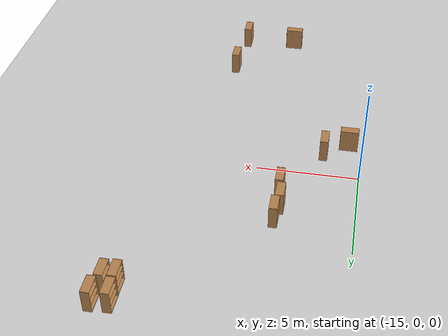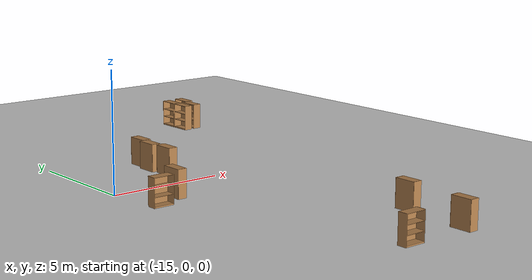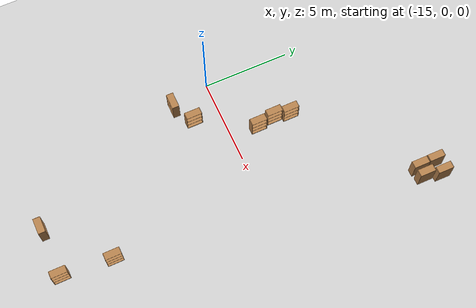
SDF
<sdf version="1.6">
 <world name="default">
  <model name="ground_plane">
   <static>1</static>
   <link name="link">
    <collision name="collision">
     <geometry><plane><normal>0 0 1</normal><size>100 100</size></plane></geometry>
     <surface>
      <contact><collide_bitmask>65535</collide_bitmask></contact>
      <friction><ode><mu>100</mu><mu2>50</mu2></ode></friction>
     </surface>
    </collision>
    <visual name="visual">
     <cast_shadows>0</cast_shadows>
     <geometry><plane><normal>0 0 1</normal><size>100 100</size></plane></geometry>
     <material>
      <script><uri>file://media/materials/scripts/gazebo.material</uri><name>Gazebo/Grey</name></script>
     </material>
    </visual>
   </link>
  </model>
  <model name="bookshelf_clone_0_clone_clone_2_clone_2_clone_3_clone_clone_clone_3">
   <static>1</static>
   <link name="link">
    <inertial><mass>1</mass></inertial>
    <collision name="back">
     <pose>0 0.005 0.6 0 -0 0</pose>
     <geometry><box><size>0.9 0.01 1.2</size></box></geometry>
    </collision>
    <visual name="visual1">
     <pose>0 0.005 0.6 0 -0 0</pose>
     <geometry><box><size>0.9 0.01 1.2</size></box></geometry>
     <material>
      <script><uri>file://media/materials/scripts/gazebo.material</uri><name>Gazebo/Wood</name></script>
     </material>
    </visual>
    <collision name="left_side">
     <pose>0.45 -0.195 0.6 0 -0 0</pose>
     <geometry><box><size>0.02 0.4 1.2</size></box></geometry>
    </collision>
    <visual name="visual2">
     <pose>0.45 -0.195 0.6 0 -0 0</pose>
     <geometry><box><size>0.02 0.4 1.2</size></box></geometry>
     <material>
      <script><uri>file://media/materials/scripts/gazebo.material</uri><name>Gazebo/Wood</name></script>
     </material>
    </visual>
    <collision name="right_side">
     <pose>-0.45 -0.195 0.6 0 -0 0</pose>
     <geometry><box><size>0.02 0.4 1.2</size></box></geometry>
    </collision>
    <visual name="visual3">
     <pose>-0.45 -0.195 0.6 0 -0 0</pose>
     <geometry><box><size>0.02 0.4 1.2</size></box></geometry>
     <material>
      <script><uri>file://media/materials/scripts/gazebo.material</uri><name>Gazebo/Wood</name></script>
     </material>
    </visual>
    <collision name="bottom">
     <pose>0 -0.195 0.03 0 -0 0</pose>
     <geometry><box><size>0.88 0.4 0.06</size></box></geometry>
    </collision>
    <visual name="visual4">
     <pose>0 -0.195 0.03 0 -0 0</pose>
     <geometry><box><size>0.88 0.4 0.06</size></box></geometry>
     <material>
      <script><uri>file://media/materials/scripts/gazebo.material</uri><name>Gazebo/Wood</name></script>
     </material>
    </visual>
    <collision name="top">
     <pose>0 -0.195 1.19 0 -0 0</pose>
     <geometry><box><size>0.88 0.4 0.02</size></box></geometry>
    </collision>
    <visual name="visual5">
     <pose>0 -0.195 1.19 0 -0 0</pose>
     <geometry><box><size>0.88 0.4 0.02</size></box></geometry>
     <material>
      <script><uri>file://media/materials/scripts/gazebo.material</uri><name>Gazebo/Wood</name></script>
     </material>
    </visual>
    <collision name="low_shelf">
     <pose>0 -0.195 0.43 0 -0 0</pose>
     <geometry><box><size>0.88 0.4 0.02</size></box></geometry>
    </collision>
    <visual name="visual6">
     <pose>0 -0.195 0.43 0 -0 0</pose>
     <geometry><box><size>0.88 0.4 0.02</size></box></geometry>
     <material>
      <script><uri>file://media/materials/scripts/gazebo.material</uri><name>Gazebo/Wood</name></script>
     </material>
    </visual>
    <collision name="high_shelf">
     <pose>0 -0.195 0.8 0 -0 0</pose>
     <geometry><box><size>0.88 0.4 0.02</size></box></geometry>
    </collision>
    <visual name="visual7">
     <pose>0 -0.195 0.8 0 -0 0</pose>
     <geometry><box><size>0.88 0.4 0.02</size></box></geometry>
     <material>
      <script><uri>file://media/materials/scripts/gazebo.material</uri><name>Gazebo/Wood</name></script>
     </material>
    </visual>
   </link>
   <pose>-7.94306 -11.4485 0 0 -0 1.57201</pose>
  </model>
  <model name="bookshelf_clone_0_clone_clone_2_clone_2_clone_3_clone_clone_clone_6">
   <static>1</static>
   <link name="link">
    <inertial><mass>1</mass></inertial>
    <collision name="back">
     <pose>0 0.005 0.6 0 -0 0</pose>
     <geometry><box><size>0.9 0.01 1.2</size></box></geometry>
    </collision>
    <visual name="visual1">
     <pose>0 0.005 0.6 0 -0 0</pose>
     <geometry><box><size>0.9 0.01 1.2</size></box></geometry>
     <material>
      <script><uri>file://media/materials/scripts/gazebo.material</uri><name>Gazebo/Wood</name></script>
     </material>
    </visual>
    <collision name="left_side">
     <pose>0.45 -0.195 0.6 0 -0 0</pose>
     <geometry><box><size>0.02 0.4 1.2</size></box></geometry>
    </collision>
    <visual name="visual2">
     <pose>0.45 -0.195 0.6 0 -0 0</pose>
     <geometry><box><size>0.02 0.4 1.2</size></box></geometry>
     <material>
      <script><uri>file://media/materials/scripts/gazebo.material</uri><name>Gazebo/Wood</name></script>
     </material>
    </visual>
    <collision name="right_side">
     <pose>-0.45 -0.195 0.6 0 -0 0</pose>
     <geometry><box><size>0.02 0.4 1.2</size></box></geometry>
    </collision>
    <visual name="visual3">
     <pose>-0.45 -0.195 0.6 0 -0 0</pose>
     <geometry><box><size>0.02 0.4 1.2</size></box></geometry>
     <material>
      <script><uri>file://media/materials/scripts/gazebo.material</uri><name>Gazebo/Wood</name></script>
     </material>
    </visual>
    <collision name="bottom">
     <pose>0 -0.195 0.03 0 -0 0</pose>
     <geometry><box><size>0.88 0.4 0.06</size></box></geometry>
    </collision>
    <visual name="visual4">
     <pose>0 -0.195 0.03 0 -0 0</pose>
     <geometry><box><size>0.88 0.4 0.06</size></box></geometry>
     <material>
      <script><uri>file://media/materials/scripts/gazebo.material</uri><name>Gazebo/Wood</name></script>
     </material>
    </visual>
    <collision name="top">
     <pose>0 -0.195 1.19 0 -0 0</pose>
     <geometry><box><size>0.88 0.4 0.02</size></box></geometry>
    </collision>
    <visual name="visual5">
     <pose>0 -0.195 1.19 0 -0 0</pose>
     <geometry><box><size>0.88 0.4 0.02</size></box></geometry>
     <material>
      <script><uri>file://media/materials/scripts/gazebo.material</uri><name>Gazebo/Wood</name></script>
     </material>
    </visual>
    <collision name="low_shelf">
     <pose>0 -0.195 0.43 0 -0 0</pose>
     <geometry><box><size>0.88 0.4 0.02</size></box></geometry>
    </collision>
    <visual name="visual6">
     <pose>0 -0.195 0.43 0 -0 0</pose>
     <geometry><box><size>0.88 0.4 0.02</size></box></geometry>
     <material>
      <script><uri>file://media/materials/scripts/gazebo.material</uri><name>Gazebo/Wood</name></script>
     </material>
    </visual>
    <collision name="high_shelf">
     <pose>0 -0.195 0.8 0 -0 0</pose>
     <geometry><box><size>0.88 0.4 0.02</size></box></geometry>
    </collision>
    <visual name="visual7">
     <pose>0 -0.195 0.8 0 -0 0</pose>
     <geometry><box><size>0.88 0.4 0.02</size></box></geometry>
     <material>
      <script><uri>file://media/materials/scripts/gazebo.material</uri><name>Gazebo/Wood</name></script>
     </material>
    </visual>
   </link>
   <pose>-7.69755 -8.55406 0 0 -0 1.57201</pose>
  </model>
  <model name="bookshelf_clone_clone_clone_0_clone_0_clone_3_clone_2_clone_0_clone_1">
   <static>1</static>
   <link name="link">
    <inertial><mass>1</mass></inertial>
    <collision name="back">
     <pose>0 0.005 0.6 0 -0 0</pose>
     <geometry><box><size>0.9 0.01 1.2</size></box></geometry>
    </collision>
    <visual name="visual1">
     <pose>0 0.005 0.6 0 -0 0</pose>
     <geometry><box><size>0.9 0.01 1.2</size></box></geometry>
     <material>
      <script><uri>file://media/materials/scripts/gazebo.material</uri><name>Gazebo/Wood</name></script>
     </material>
    </visual>
    <collision name="left_side">
     <pose>0.45 -0.195 0.6 0 -0 0</pose>
     <geometry><box><size>0.02 0.4 1.2</size></box></geometry>
    </collision>
    <visual name="visual2">
     <pose>0.45 -0.195 0.6 0 -0 0</pose>
     <geometry><box><size>0.02 0.4 1.2</size></box></geometry>
     <material>
      <script><uri>file://media/materials/scripts/gazebo.material</uri><name>Gazebo/Wood</name></script>
     </material>
    </visual>
    <collision name="right_side">
     <pose>-0.45 -0.195 0.6 0 -0 0</pose>
     <geometry><box><size>0.02 0.4 1.2</size></box></geometry>
    </collision>
    <visual name="visual3">
     <pose>-0.45 -0.195 0.6 0 -0 0</pose>
     <geometry><box><size>0.02 0.4 1.2</size></box></geometry>
     <material>
      <script><uri>file://media/materials/scripts/gazebo.material</uri><name>Gazebo/Wood</name></script>
     </material>
    </visual>
    <collision name="bottom">
     <pose>0 -0.195 0.03 0 -0 0</pose>
     <geometry><box><size>0.88 0.4 0.06</size></box></geometry>
    </collision>
    <visual name="visual4">
     <pose>0 -0.195 0.03 0 -0 0</pose>
     <geometry><box><size>0.88 0.4 0.06</size></box></geometry>
     <material>
      <script><uri>file://media/materials/scripts/gazebo.material</uri><name>Gazebo/Wood</name></script>
     </material>
    </visual>
    <collision name="top">
     <pose>0 -0.195 1.19 0 -0 0</pose>
     <geometry><box><size>0.88 0.4 0.02</size></box></geometry>
    </collision>
    <visual name="visual5">
     <pose>0 -0.195 1.19 0 -0 0</pose>
     <geometry><box><size>0.88 0.4 0.02</size></box></geometry>
     <material>
      <script><uri>file://media/materials/scripts/gazebo.material</uri><name>Gazebo/Wood</name></script>
     </material>
    </visual>
    <collision name="low_shelf">
     <pose>0 -0.195 0.43 0 -0 0</pose>
     <geometry><box><size>0.88 0.4 0.02</size></box></geometry>
    </collision>
    <visual name="visual6">
     <pose>0 -0.195 0.43 0 -0 0</pose>
     <geometry><box><size>0.88 0.4 0.02</size></box></geometry>
     <material>
      <script><uri>file://media/materials/scripts/gazebo.material</uri><name>Gazebo/Wood</name></script>
     </material>
    </visual>
    <collision name="high_shelf">
     <pose>0 -0.195 0.8 0 -0 0</pose>
     <geometry><box><size>0.88 0.4 0.02</size></box></geometry>
    </collision>
    <visual name="visual7">
     <pose>0 -0.195 0.8 0 -0 0</pose>
     <geometry><box><size>0.88 0.4 0.02</size></box></geometry>
     <material>
      <script><uri>file://media/materials/scripts/gazebo.material</uri><name>Gazebo/Wood</name></script>
     </material>
    </visual>
   </link>
   <pose>-10.5292 -11.2961 0 0 -0 0</pose>
  </model>
  <model name="bookshelf_clone_clone_clone_0_clone_0_clone_3_clone_2_clone_0_clone_1_clone">
   <static>1</static>
   <link name="link">
    <inertial><mass>1</mass></inertial>
    <collision name="back">
     <pose>0 0.005 0.6 0 -0 0</pose>
     <geometry><box><size>0.9 0.01 1.2</size></box></geometry>
    </collision>
    <visual name="visual1">
     <pose>0 0.005 0.6 0 -0 0</pose>
     <geometry><box><size>0.9 0.01 1.2</size></box></geometry>
     <material>
      <script><uri>file://media/materials/scripts/gazebo.material</uri><name>Gazebo/Wood</name></script>
     </material>
    </visual>
    <collision name="left_side">
     <pose>0.45 -0.195 0.6 0 -0 0</pose>
     <geometry><box><size>0.02 0.4 1.2</size></box></geometry>
    </collision>
    <visual name="visual2">
     <pose>0.45 -0.195 0.6 0 -0 0</pose>
     <geometry><box><size>0.02 0.4 1.2</size></box></geometry>
     <material>
      <script><uri>file://media/materials/scripts/gazebo.material</uri><name>Gazebo/Wood</name></script>
     </material>
    </visual>
    <collision name="right_side">
     <pose>-0.45 -0.195 0.6 0 -0 0</pose>
     <geometry><box><size>0.02 0.4 1.2</size></box></geometry>
    </collision>
    <visual name="visual3">
     <pose>-0.45 -0.195 0.6 0 -0 0</pose>
     <geometry><box><size>0.02 0.4 1.2</size></box></geometry>
     <material>
      <script><uri>file://media/materials/scripts/gazebo.material</uri><name>Gazebo/Wood</name></script>
     </material>
    </visual>
    <collision name="bottom">
     <pose>0 -0.195 0.03 0 -0 0</pose>
     <geometry><box><size>0.88 0.4 0.06</size></box></geometry>
    </collision>
    <visual name="visual4">
     <pose>0 -0.195 0.03 0 -0 0</pose>
     <geometry><box><size>0.88 0.4 0.06</size></box></geometry>
     <material>
      <script><uri>file://media/materials/scripts/gazebo.material</uri><name>Gazebo/Wood</name></script>
     </material>
    </visual>
    <collision name="top">
     <pose>0 -0.195 1.19 0 -0 0</pose>
     <geometry><box><size>0.88 0.4 0.02</size></box></geometry>
    </collision>
    <visual name="visual5">
     <pose>0 -0.195 1.19 0 -0 0</pose>
     <geometry><box><size>0.88 0.4 0.02</size></box></geometry>
     <material>
      <script><uri>file://media/materials/scripts/gazebo.material</uri><name>Gazebo/Wood</name></script>
     </material>
    </visual>
    <collision name="low_shelf">
     <pose>0 -0.195 0.43 0 -0 0</pose>
     <geometry><box><size>0.88 0.4 0.02</size></box></geometry>
    </collision>
    <visual name="visual6">
     <pose>0 -0.195 0.43 0 -0 0</pose>
     <geometry><box><size>0.88 0.4 0.02</size></box></geometry>
     <material>
      <script><uri>file://media/materials/scripts/gazebo.material</uri><name>Gazebo/Wood</name></script>
     </material>
    </visual>
    <collision name="high_shelf">
     <pose>0 -0.195 0.8 0 -0 0</pose>
     <geometry><box><size>0.88 0.4 0.02</size></box></geometry>
    </collision>
    <visual name="visual7">
     <pose>0 -0.195 0.8 0 -0 0</pose>
     <geometry><box><size>0.88 0.4 0.02</size></box></geometry>
     <material>
      <script><uri>file://media/materials/scripts/gazebo.material</uri><name>Gazebo/Wood</name></script>
     </material>
    </visual>
   </link>
   <pose>-14.3684 -2.09503 0 0 -0 0</pose>
  </model>
  <model name="bookshelf_clone_0_clone_clone_2_clone_2_clone_3_clone_clone_clone_6_clone">
   <static>1</static>
   <link name="link">
    <inertial><mass>1</mass></inertial>
    <collision name="back">
     <pose>0 0.005 0.6 0 -0 0</pose>
     <geometry><box><size>0.9 0.01 1.2</size></box></geometry>
    </collision>
    <visual name="visual1">
     <pose>0 0.005 0.6 0 -0 0</pose>
     <geometry><box><size>0.9 0.01 1.2</size></box></geometry>
     <material>
      <script><uri>file://media/materials/scripts/gazebo.material</uri><name>Gazebo/Wood</name></script>
     </material>
    </visual>
    <collision name="left_side">
     <pose>0.45 -0.195 0.6 0 -0 0</pose>
     <geometry><box><size>0.02 0.4 1.2</size></box></geometry>
    </collision>
    <visual name="visual2">
     <pose>0.45 -0.195 0.6 0 -0 0</pose>
     <geometry><box><size>0.02 0.4 1.2</size></box></geometry>
     <material>
      <script><uri>file://media/materials/scripts/gazebo.material</uri><name>Gazebo/Wood</name></script>
     </material>
    </visual>
    <collision name="right_side">
     <pose>-0.45 -0.195 0.6 0 -0 0</pose>
     <geometry><box><size>0.02 0.4 1.2</size></box></geometry>
    </collision>
    <visual name="visual3">
     <pose>-0.45 -0.195 0.6 0 -0 0</pose>
     <geometry><box><size>0.02 0.4 1.2</size></box></geometry>
     <material>
      <script><uri>file://media/materials/scripts/gazebo.material</uri><name>Gazebo/Wood</name></script>
     </material>
    </visual>
    <collision name="bottom">
     <pose>0 -0.195 0.03 0 -0 0</pose>
     <geometry><box><size>0.88 0.4 0.06</size></box></geometry>
    </collision>
    <visual name="visual4">
     <pose>0 -0.195 0.03 0 -0 0</pose>
     <geometry><box><size>0.88 0.4 0.06</size></box></geometry>
     <material>
      <script><uri>file://media/materials/scripts/gazebo.material</uri><name>Gazebo/Wood</name></script>
     </material>
    </visual>
    <collision name="top">
     <pose>0 -0.195 1.19 0 -0 0</pose>
     <geometry><box><size>0.88 0.4 0.02</size></box></geometry>
    </collision>
    <visual name="visual5">
     <pose>0 -0.195 1.19 0 -0 0</pose>
     <geometry><box><size>0.88 0.4 0.02</size></box></geometry>
     <material>
      <script><uri>file://media/materials/scripts/gazebo.material</uri><name>Gazebo/Wood</name></script>
     </material>
    </visual>
    <collision name="low_shelf">
     <pose>0 -0.195 0.43 0 -0 0</pose>
     <geometry><box><size>0.88 0.4 0.02</size></box></geometry>
    </collision>
    <visual name="visual6">
     <pose>0 -0.195 0.43 0 -0 0</pose>
     <geometry><box><size>0.88 0.4 0.02</size></box></geometry>
     <material>
      <script><uri>file://media/materials/scripts/gazebo.material</uri><name>Gazebo/Wood</name></script>
     </material>
    </visual>
    <collision name="high_shelf">
     <pose>0 -0.195 0.8 0 -0 0</pose>
     <geometry><box><size>0.88 0.4 0.02</size></box></geometry>
    </collision>
    <visual name="visual7">
     <pose>0 -0.195 0.8 0 -0 0</pose>
     <geometry><box><size>0.88 0.4 0.02</size></box></geometry>
     <material>
      <script><uri>file://media/materials/scripts/gazebo.material</uri><name>Gazebo/Wood</name></script>
     </material>
    </visual>
   </link>
   <pose>-13.3636 -1.56549 0 0 -0 1.57201</pose>
  </model>
  <model name="bookshelf_clone_0_clone_clone_2_clone_2_clone_3_clone_clone_clone_6_clone_0">
   <static>1</static>
   <link name="link">
    <inertial><mass>1</mass></inertial>
    <collision name="back">
     <pose>0 0.005 0.6 0 -0 0</pose>
     <geometry><box><size>0.9 0.01 1.2</size></box></geometry>
    </collision>
    <visual name="visual1">
     <pose>0 0.005 0.6 0 -0 0</pose>
     <geometry><box><size>0.9 0.01 1.2</size></box></geometry>
     <material>
      <script><uri>file://media/materials/scripts/gazebo.material</uri><name>Gazebo/Wood</name></script>
     </material>
    </visual>
    <collision name="left_side">
     <pose>0.45 -0.195 0.6 0 -0 0</pose>
     <geometry><box><size>0.02 0.4 1.2</size></box></geometry>
    </collision>
    <visual name="visual2">
     <pose>0.45 -0.195 0.6 0 -0 0</pose>
     <geometry><box><size>0.02 0.4 1.2</size></box></geometry>
     <material>
      <script><uri>file://media/materials/scripts/gazebo.material</uri><name>Gazebo/Wood</name></script>
     </material>
    </visual>
    <collision name="right_side">
     <pose>-0.45 -0.195 0.6 0 -0 0</pose>
     <geometry><box><size>0.02 0.4 1.2</size></box></geometry>
    </collision>
    <visual name="visual3">
     <pose>-0.45 -0.195 0.6 0 -0 0</pose>
     <geometry><box><size>0.02 0.4 1.2</size></box></geometry>
     <material>
      <script><uri>file://media/materials/scripts/gazebo.material</uri><name>Gazebo/Wood</name></script>
     </material>
    </visual>
    <collision name="bottom">
     <pose>0 -0.195 0.03 0 -0 0</pose>
     <geometry><box><size>0.88 0.4 0.06</size></box></geometry>
    </collision>
    <visual name="visual4">
     <pose>0 -0.195 0.03 0 -0 0</pose>
     <geometry><box><size>0.88 0.4 0.06</size></box></geometry>
     <material>
      <script><uri>file://media/materials/scripts/gazebo.material</uri><name>Gazebo/Wood</name></script>
     </material>
    </visual>
    <collision name="top">
     <pose>0 -0.195 1.19 0 -0 0</pose>
     <geometry><box><size>0.88 0.4 0.02</size></box></geometry>
    </collision>
    <visual name="visual5">
     <pose>0 -0.195 1.19 0 -0 0</pose>
     <geometry><box><size>0.88 0.4 0.02</size></box></geometry>
     <material>
      <script><uri>file://media/materials/scripts/gazebo.material</uri><name>Gazebo/Wood</name></script>
     </material>
    </visual>
    <collision name="low_shelf">
     <pose>0 -0.195 0.43 0 -0 0</pose>
     <geometry><box><size>0.88 0.4 0.02</size></box></geometry>
    </collision>
    <visual name="visual6">
     <pose>0 -0.195 0.43 0 -0 0</pose>
     <geometry><box><size>0.88 0.4 0.02</size></box></geometry>
     <material>
      <script><uri>file://media/materials/scripts/gazebo.material</uri><name>Gazebo/Wood</name></script>
     </material>
    </visual>
    <collision name="high_shelf">
     <pose>0 -0.195 0.8 0 -0 0</pose>
     <geometry><box><size>0.88 0.4 0.02</size></box></geometry>
    </collision>
    <visual name="visual7">
     <pose>0 -0.195 0.8 0 -0 0</pose>
     <geometry><box><size>0.88 0.4 0.02</size></box></geometry>
     <material>
      <script><uri>file://media/materials/scripts/gazebo.material</uri><name>Gazebo/Wood</name></script>
     </material>
    </visual>
   </link>
   <pose>-11.5274 1.56856 0 0 -0 1.57201</pose>
  </model>
  <model name="bookshelf_clone_0_clone_clone_2_clone_2_clone_3_clone_clone_clone_6_clone_1">
   <static>1</static>
   <link name="link">
    <inertial><mass>1</mass></inertial>
    <collision name="back">
     <pose>0 0.005 0.6 0 -0 0</pose>
     <geometry><box><size>0.9 0.01 1.2</size></box></geometry>
    </collision>
    <visual name="visual1">
     <pose>0 0.005 0.6 0 -0 0</pose>
     <geometry><box><size>0.9 0.01 1.2</size></box></geometry>
     <material>
      <script><uri>file://media/materials/scripts/gazebo.material</uri><name>Gazebo/Wood</name></script>
     </material>
    </visual>
    <collision name="left_side">
     <pose>0.45 -0.195 0.6 0 -0 0</pose>
     <geometry><box><size>0.02 0.4 1.2</size></box></geometry>
    </collision>
    <visual name="visual2">
     <pose>0.45 -0.195 0.6 0 -0 0</pose>
     <geometry><box><size>0.02 0.4 1.2</size></box></geometry>
     <material>
      <script><uri>file://media/materials/scripts/gazebo.material</uri><name>Gazebo/Wood</name></script>
     </material>
    </visual>
    <collision name="right_side">
     <pose>-0.45 -0.195 0.6 0 -0 0</pose>
     <geometry><box><size>0.02 0.4 1.2</size></box></geometry>
    </collision>
    <visual name="visual3">
     <pose>-0.45 -0.195 0.6 0 -0 0</pose>
     <geometry><box><size>0.02 0.4 1.2</size></box></geometry>
     <material>
      <script><uri>file://media/materials/scripts/gazebo.material</uri><name>Gazebo/Wood</name></script>
     </material>
    </visual>
    <collision name="bottom">
     <pose>0 -0.195 0.03 0 -0 0</pose>
     <geometry><box><size>0.88 0.4 0.06</size></box></geometry>
    </collision>
    <visual name="visual4">
     <pose>0 -0.195 0.03 0 -0 0</pose>
     <geometry><box><size>0.88 0.4 0.06</size></box></geometry>
     <material>
      <script><uri>file://media/materials/scripts/gazebo.material</uri><name>Gazebo/Wood</name></script>
     </material>
    </visual>
    <collision name="top">
     <pose>0 -0.195 1.19 0 -0 0</pose>
     <geometry><box><size>0.88 0.4 0.02</size></box></geometry>
    </collision>
    <visual name="visual5">
     <pose>0 -0.195 1.19 0 -0 0</pose>
     <geometry><box><size>0.88 0.4 0.02</size></box></geometry>
     <material>
      <script><uri>file://media/materials/scripts/gazebo.material</uri><name>Gazebo/Wood</name></script>
     </material>
    </visual>
    <collision name="low_shelf">
     <pose>0 -0.195 0.43 0 -0 0</pose>
     <geometry><box><size>0.88 0.4 0.02</size></box></geometry>
    </collision>
    <visual name="visual6">
     <pose>0 -0.195 0.43 0 -0 0</pose>
     <geometry><box><size>0.88 0.4 0.02</size></box></geometry>
     <material>
      <script><uri>file://media/materials/scripts/gazebo.material</uri><name>Gazebo/Wood</name></script>
     </material>
    </visual>
    <collision name="high_shelf">
     <pose>0 -0.195 0.8 0 -0 0</pose>
     <geometry><box><size>0.88 0.4 0.02</size></box></geometry>
    </collision>
    <visual name="visual7">
     <pose>0 -0.195 0.8 0 -0 0</pose>
     <geometry><box><size>0.88 0.4 0.02</size></box></geometry>
     <material>
      <script><uri>file://media/materials/scripts/gazebo.material</uri><name>Gazebo/Wood</name></script>
     </material>
    </visual>
   </link>
   <pose>-11.675 2.59265 0 0 -0 1.57201</pose>
  </model>
  <model name="bookshelf_clone_0_clone_clone_2_clone_2_clone_3_clone_clone_clone_6_clone_2">
   <static>1</static>
   <link name="link">
    <inertial><mass>1</mass></inertial>
    <collision name="back">
     <pose>0 0.005 0.6 0 -0 0</pose>
     <geometry><box><size>0.9 0.01 1.2</size></box></geometry>
    </collision>
    <visual name="visual1">
     <pose>0 0.005 0.6 0 -0 0</pose>
     <geometry><box><size>0.9 0.01 1.2</size></box></geometry>
     <material>
      <script><uri>file://media/materials/scripts/gazebo.material</uri><name>Gazebo/Wood</name></script>
     </material>
    </visual>
    <collision name="left_side">
     <pose>0.45 -0.195 0.6 0 -0 0</pose>
     <geometry><box><size>0.02 0.4 1.2</size></box></geometry>
    </collision>
    <visual name="visual2">
     <pose>0.45 -0.195 0.6 0 -0 0</pose>
     <geometry><box><size>0.02 0.4 1.2</size></box></geometry>
     <material>
      <script><uri>file://media/materials/scripts/gazebo.material</uri><name>Gazebo/Wood</name></script>
     </material>
    </visual>
    <collision name="right_side">
     <pose>-0.45 -0.195 0.6 0 -0 0</pose>
     <geometry><box><size>0.02 0.4 1.2</size></box></geometry>
    </collision>
    <visual name="visual3">
     <pose>-0.45 -0.195 0.6 0 -0 0</pose>
     <geometry><box><size>0.02 0.4 1.2</size></box></geometry>
     <material>
      <script><uri>file://media/materials/scripts/gazebo.material</uri><name>Gazebo/Wood</name></script>
     </material>
    </visual>
    <collision name="bottom">
     <pose>0 -0.195 0.03 0 -0 0</pose>
     <geometry><box><size>0.88 0.4 0.06</size></box></geometry>
    </collision>
    <visual name="visual4">
     <pose>0 -0.195 0.03 0 -0 0</pose>
     <geometry><box><size>0.88 0.4 0.06</size></box></geometry>
     <material>
      <script><uri>file://media/materials/scripts/gazebo.material</uri><name>Gazebo/Wood</name></script>
     </material>
    </visual>
    <collision name="top">
     <pose>0 -0.195 1.19 0 -0 0</pose>
     <geometry><box><size>0.88 0.4 0.02</size></box></geometry>
    </collision>
    <visual name="visual5">
     <pose>0 -0.195 1.19 0 -0 0</pose>
     <geometry><box><size>0.88 0.4 0.02</size></box></geometry>
     <material>
      <script><uri>file://media/materials/scripts/gazebo.material</uri><name>Gazebo/Wood</name></script>
     </material>
    </visual>
    <collision name="low_shelf">
     <pose>0 -0.195 0.43 0 -0 0</pose>
     <geometry><box><size>0.88 0.4 0.02</size></box></geometry>
    </collision>
    <visual name="visual6">
     <pose>0 -0.195 0.43 0 -0 0</pose>
     <geometry><box><size>0.88 0.4 0.02</size></box></geometry>
     <material>
      <script><uri>file://media/materials/scripts/gazebo.material</uri><name>Gazebo/Wood</name></script>
     </material>
    </visual>
    <collision name="high_shelf">
     <pose>0 -0.195 0.8 0 -0 0</pose>
     <geometry><box><size>0.88 0.4 0.02</size></box></geometry>
    </collision>
    <visual name="visual7">
     <pose>0 -0.195 0.8 0 -0 0</pose>
     <geometry><box><size>0.88 0.4 0.02</size></box></geometry>
     <material>
      <script><uri>file://media/materials/scripts/gazebo.material</uri><name>Gazebo/Wood</name></script>
     </material>
    </visual>
   </link>
   <pose>-11.5076 3.51608 0 0 -0 1.57201</pose>
  </model>
  <model name="bookshelf_clone_0_clone_clone_2_clone_2_clone_3_clone_0_clone_2_clone_0">
   <static>1</static>
   <link name="link">
    <inertial><mass>1</mass></inertial>
    <collision name="back">
     <pose>0 0.005 0.6 0 -0 0</pose>
     <geometry><box><size>0.9 0.01 1.2</size></box></geometry>
    </collision>
    <visual name="visual1">
     <pose>0 0.005 0.6 0 -0 0</pose>
     <geometry><box><size>0.9 0.01 1.2</size></box></geometry>
     <material>
      <script><uri>file://media/materials/scripts/gazebo.material</uri><name>Gazebo/Wood</name></script>
     </material>
    </visual>
    <collision name="left_side">
     <pose>0.45 -0.195 0.6 0 -0 0</pose>
     <geometry><box><size>0.02 0.4 1.2</size></box></geometry>
    </collision>
    <visual name="visual2">
     <pose>0.45 -0.195 0.6 0 -0 0</pose>
     <geometry><box><size>0.02 0.4 1.2</size></box></geometry>
     <material>
      <script><uri>file://media/materials/scripts/gazebo.material</uri><name>Gazebo/Wood</name></script>
     </material>
    </visual>
    <collision name="right_side">
     <pose>-0.45 -0.195 0.6 0 -0 0</pose>
     <geometry><box><size>0.02 0.4 1.2</size></box></geometry>
    </collision>
    <visual name="visual3">
     <pose>-0.45 -0.195 0.6 0 -0 0</pose>
     <geometry><box><size>0.02 0.4 1.2</size></box></geometry>
     <material>
      <script><uri>file://media/materials/scripts/gazebo.material</uri><name>Gazebo/Wood</name></script>
     </material>
    </visual>
    <collision name="bottom">
     <pose>0 -0.195 0.03 0 -0 0</pose>
     <geometry><box><size>0.88 0.4 0.06</size></box></geometry>
    </collision>
    <visual name="visual4">
     <pose>0 -0.195 0.03 0 -0 0</pose>
     <geometry><box><size>0.88 0.4 0.06</size></box></geometry>
     <material>
      <script><uri>file://media/materials/scripts/gazebo.material</uri><name>Gazebo/Wood</name></script>
     </material>
    </visual>
    <collision name="top">
     <pose>0 -0.195 1.19 0 -0 0</pose>
     <geometry><box><size>0.88 0.4 0.02</size></box></geometry>
    </collision>
    <visual name="visual5">
     <pose>0 -0.195 1.19 0 -0 0</pose>
     <geometry><box><size>0.88 0.4 0.02</size></box></geometry>
     <material>
      <script><uri>file://media/materials/scripts/gazebo.material</uri><name>Gazebo/Wood</name></script>
     </material>
    </visual>
    <collision name="low_shelf">
     <pose>0 -0.195 0.43 0 -0 0</pose>
     <geometry><box><size>0.88 0.4 0.02</size></box></geometry>
    </collision>
    <visual name="visual6">
     <pose>0 -0.195 0.43 0 -0 0</pose>
     <geometry><box><size>0.88 0.4 0.02</size></box></geometry>
     <material>
      <script><uri>file://media/materials/scripts/gazebo.material</uri><name>Gazebo/Wood</name></script>
     </material>
    </visual>
    <collision name="high_shelf">
     <pose>0 -0.195 0.8 0 -0 0</pose>
     <geometry><box><size>0.88 0.4 0.02</size></box></geometry>
    </collision>
    <visual name="visual7">
     <pose>0 -0.195 0.8 0 -0 0</pose>
     <geometry><box><size>0.88 0.4 0.02</size></box></geometry>
     <material>
      <script><uri>file://media/materials/scripts/gazebo.material</uri><name>Gazebo/Wood</name></script>
     </material>
    </visual>
   </link>
   <pose>-4.61815 8.54315 0 0 0 -1.58271</pose>
  </model>
  <model name="bookshelf_clone_0_clone_clone_2_clone_2_clone_3_clone_0_clone_2_clone_1">
   <static>1</static>
   <link name="link">
    <inertial><mass>1</mass></inertial>
    <collision name="back">
     <pose>0 0.005 0.6 0 -0 0</pose>
     <geometry><box><size>0.9 0.01 1.2</size></box></geometry>
    </collision>
    <visual name="visual1">
     <pose>0 0.005 0.6 0 -0 0</pose>
     <geometry><box><size>0.9 0.01 1.2</size></box></geometry>
     <material>
      <script><uri>file://media/materials/scripts/gazebo.material</uri><name>Gazebo/Wood</name></script>
     </material>
    </visual>
    <collision name="left_side">
     <pose>0.45 -0.195 0.6 0 -0 0</pose>
     <geometry><box><size>0.02 0.4 1.2</size></box></geometry>
    </collision>
    <visual name="visual2">
     <pose>0.45 -0.195 0.6 0 -0 0</pose>
     <geometry><box><size>0.02 0.4 1.2</size></box></geometry>
     <material>
      <script><uri>file://media/materials/scripts/gazebo.material</uri><name>Gazebo/Wood</name></script>
     </material>
    </visual>
    <collision name="right_side">
     <pose>-0.45 -0.195 0.6 0 -0 0</pose>
     <geometry><box><size>0.02 0.4 1.2</size></box></geometry>
    </collision>
    <visual name="visual3">
     <pose>-0.45 -0.195 0.6 0 -0 0</pose>
     <geometry><box><size>0.02 0.4 1.2</size></box></geometry>
     <material>
      <script><uri>file://media/materials/scripts/gazebo.material</uri><name>Gazebo/Wood</name></script>
     </material>
    </visual>
    <collision name="bottom">
     <pose>0 -0.195 0.03 0 -0 0</pose>
     <geometry><box><size>0.88 0.4 0.06</size></box></geometry>
    </collision>
    <visual name="visual4">
     <pose>0 -0.195 0.03 0 -0 0</pose>
     <geometry><box><size>0.88 0.4 0.06</size></box></geometry>
     <material>
      <script><uri>file://media/materials/scripts/gazebo.material</uri><name>Gazebo/Wood</name></script>
     </material>
    </visual>
    <collision name="top">
     <pose>0 -0.195 1.19 0 -0 0</pose>
     <geometry><box><size>0.88 0.4 0.02</size></box></geometry>
    </collision>
    <visual name="visual5">
     <pose>0 -0.195 1.19 0 -0 0</pose>
     <geometry><box><size>0.88 0.4 0.02</size></box></geometry>
     <material>
      <script><uri>file://media/materials/scripts/gazebo.material</uri><name>Gazebo/Wood</name></script>
     </material>
    </visual>
    <collision name="low_shelf">
     <pose>0 -0.195 0.43 0 -0 0</pose>
     <geometry><box><size>0.88 0.4 0.02</size></box></geometry>
    </collision>
    <visual name="visual6">
     <pose>0 -0.195 0.43 0 -0 0</pose>
     <geometry><box><size>0.88 0.4 0.02</size></box></geometry>
     <material>
      <script><uri>file://media/materials/scripts/gazebo.material</uri><name>Gazebo/Wood</name></script>
     </material>
    </visual>
    <collision name="high_shelf">
     <pose>0 -0.195 0.8 0 -0 0</pose>
     <geometry><box><size>0.88 0.4 0.02</size></box></geometry>
    </collision>
    <visual name="visual7">
     <pose>0 -0.195 0.8 0 -0 0</pose>
     <geometry><box><size>0.88 0.4 0.02</size></box></geometry>
     <material>
      <script><uri>file://media/materials/scripts/gazebo.material</uri><name>Gazebo/Wood</name></script>
     </material>
    </visual>
   </link>
   <pose>-4.37564 9.51295 0 0 0 -1.58271</pose>
  </model>
  <model name="bookshelf_clone_0_clone_clone_2_clone_2_clone_3_clone_0_clone_2_clone_2">
   <static>1</static>
   <link name="link">
    <inertial><mass>1</mass></inertial>
    <collision name="back">
     <pose>0 0.005 0.6 0 -0 0</pose>
     <geometry><box><size>0.9 0.01 1.2</size></box></geometry>
    </collision>
    <visual name="visual1">
     <pose>0 0.005 0.6 0 -0 0</pose>
     <geometry><box><size>0.9 0.01 1.2</size></box></geometry>
     <material>
      <script><uri>file://media/materials/scripts/gazebo.material</uri><name>Gazebo/Wood</name></script>
     </material>
    </visual>
    <collision name="left_side">
     <pose>0.45 -0.195 0.6 0 -0 0</pose>
     <geometry><box><size>0.02 0.4 1.2</size></box></geometry>
    </collision>
    <visual name="visual2">
     <pose>0.45 -0.195 0.6 0 -0 0</pose>
     <geometry><box><size>0.02 0.4 1.2</size></box></geometry>
     <material>
      <script><uri>file://media/materials/scripts/gazebo.material</uri><name>Gazebo/Wood</name></script>
     </material>
    </visual>
    <collision name="right_side">
     <pose>-0.45 -0.195 0.6 0 -0 0</pose>
     <geometry><box><size>0.02 0.4 1.2</size></box></geometry>
    </collision>
    <visual name="visual3">
     <pose>-0.45 -0.195 0.6 0 -0 0</pose>
     <geometry><box><size>0.02 0.4 1.2</size></box></geometry>
     <material>
      <script><uri>file://media/materials/scripts/gazebo.material</uri><name>Gazebo/Wood</name></script>
     </material>
    </visual>
    <collision name="bottom">
     <pose>0 -0.195 0.03 0 -0 0</pose>
     <geometry><box><size>0.88 0.4 0.06</size></box></geometry>
    </collision>
    <visual name="visual4">
     <pose>0 -0.195 0.03 0 -0 0</pose>
     <geometry><box><size>0.88 0.4 0.06</size></box></geometry>
     <material>
      <script><uri>file://media/materials/scripts/gazebo.material</uri><name>Gazebo/Wood</name></script>
     </material>
    </visual>
    <collision name="top">
     <pose>0 -0.195 1.19 0 -0 0</pose>
     <geometry><box><size>0.88 0.4 0.02</size></box></geometry>
    </collision>
    <visual name="visual5">
     <pose>0 -0.195 1.19 0 -0 0</pose>
     <geometry><box><size>0.88 0.4 0.02</size></box></geometry>
     <material>
      <script><uri>file://media/materials/scripts/gazebo.material</uri><name>Gazebo/Wood</name></script>
     </material>
    </visual>
    <collision name="low_shelf">
     <pose>0 -0.195 0.43 0 -0 0</pose>
     <geometry><box><size>0.88 0.4 0.02</size></box></geometry>
    </collision>
    <visual name="visual6">
     <pose>0 -0.195 0.43 0 -0 0</pose>
     <geometry><box><size>0.88 0.4 0.02</size></box></geometry>
     <material>
      <script><uri>file://media/materials/scripts/gazebo.material</uri><name>Gazebo/Wood</name></script>
     </material>
    </visual>
    <collision name="high_shelf">
     <pose>0 -0.195 0.8 0 -0 0</pose>
     <geometry><box><size>0.88 0.4 0.02</size></box></geometry>
    </collision>
    <visual name="visual7">
     <pose>0 -0.195 0.8 0 -0 0</pose>
     <geometry><box><size>0.88 0.4 0.02</size></box></geometry>
     <material>
      <script><uri>file://media/materials/scripts/gazebo.material</uri><name>Gazebo/Wood</name></script>
     </material>
    </visual>
   </link>
   <pose>-5.17744 9.44449 0 0 0 -1.58271</pose>
  </model>
  <model name="bookshelf_clone_0_clone_clone_2_clone_2_clone_3_clone_0_clone_2_clone_3">
   <static>1</static>
   <link name="link">
    <inertial><mass>1</mass></inertial>
    <collision name="back">
     <pose>0 0.005 0.6 0 -0 0</pose>
     <geometry><box><size>0.9 0.01 1.2</size></box></geometry>
    </collision>
    <visual name="visual1">
     <pose>0 0.005 0.6 0 -0 0</pose>
     <geometry><box><size>0.9 0.01 1.2</size></box></geometry>
     <material>
      <script><uri>file://media/materials/scripts/gazebo.material</uri><name>Gazebo/Wood</name></script>
     </material>
    </visual>
    <collision name="left_side">
     <pose>0.45 -0.195 0.6 0 -0 0</pose>
     <geometry><box><size>0.02 0.4 1.2</size></box></geometry>
    </collision>
    <visual name="visual2">
     <pose>0.45 -0.195 0.6 0 -0 0</pose>
     <geometry><box><size>0.02 0.4 1.2</size></box></geometry>
     <material>
      <script><uri>file://media/materials/scripts/gazebo.material</uri><name>Gazebo/Wood</name></script>
     </material>
    </visual>
    <collision name="right_side">
     <pose>-0.45 -0.195 0.6 0 -0 0</pose>
     <geometry><box><size>0.02 0.4 1.2</size></box></geometry>
    </collision>
    <visual name="visual3">
     <pose>-0.45 -0.195 0.6 0 -0 0</pose>
     <geometry><box><size>0.02 0.4 1.2</size></box></geometry>
     <material>
      <script><uri>file://media/materials/scripts/gazebo.material</uri><name>Gazebo/Wood</name></script>
     </material>
    </visual>
    <collision name="bottom">
     <pose>0 -0.195 0.03 0 -0 0</pose>
     <geometry><box><size>0.88 0.4 0.06</size></box></geometry>
    </collision>
    <visual name="visual4">
     <pose>0 -0.195 0.03 0 -0 0</pose>
     <geometry><box><size>0.88 0.4 0.06</size></box></geometry>
     <material>
      <script><uri>file://media/materials/scripts/gazebo.material</uri><name>Gazebo/Wood</name></script>
     </material>
    </visual>
    <collision name="top">
     <pose>0 -0.195 1.19 0 -0 0</pose>
     <geometry><box><size>0.88 0.4 0.02</size></box></geometry>
    </collision>
    <visual name="visual5">
     <pose>0 -0.195 1.19 0 -0 0</pose>
     <geometry><box><size>0.88 0.4 0.02</size></box></geometry>
     <material>
      <script><uri>file://media/materials/scripts/gazebo.material</uri><name>Gazebo/Wood</name></script>
     </material>
    </visual>
    <collision name="low_shelf">
     <pose>0 -0.195 0.43 0 -0 0</pose>
     <geometry><box><size>0.88 0.4 0.02</size></box></geometry>
    </collision>
    <visual name="visual6">
     <pose>0 -0.195 0.43 0 -0 0</pose>
     <geometry><box><size>0.88 0.4 0.02</size></box></geometry>
     <material>
      <script><uri>file://media/materials/scripts/gazebo.material</uri><name>Gazebo/Wood</name></script>
     </material>
    </visual>
    <collision name="high_shelf">
     <pose>0 -0.195 0.8 0 -0 0</pose>
     <geometry><box><size>0.88 0.4 0.02</size></box></geometry>
    </collision>
    <visual name="visual7">
     <pose>0 -0.195 0.8 0 -0 0</pose>
     <geometry><box><size>0.88 0.4 0.02</size></box></geometry>
     <material>
      <script><uri>file://media/materials/scripts/gazebo.material</uri><name>Gazebo/Wood</name></script>
     </material>
    </visual>
   </link>
   <pose>-5.1784 8.49096 0 0 0 -1.58271</pose>
  </model>
 </world>
</sdf>
